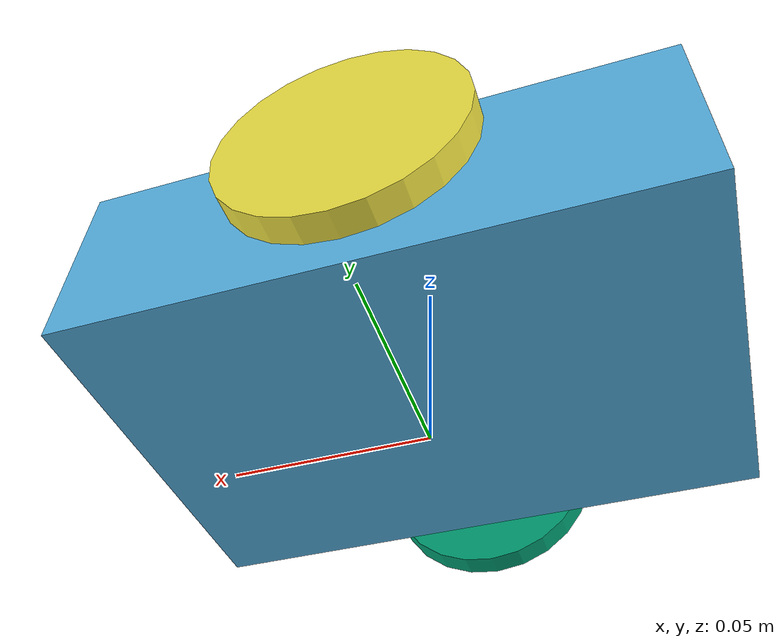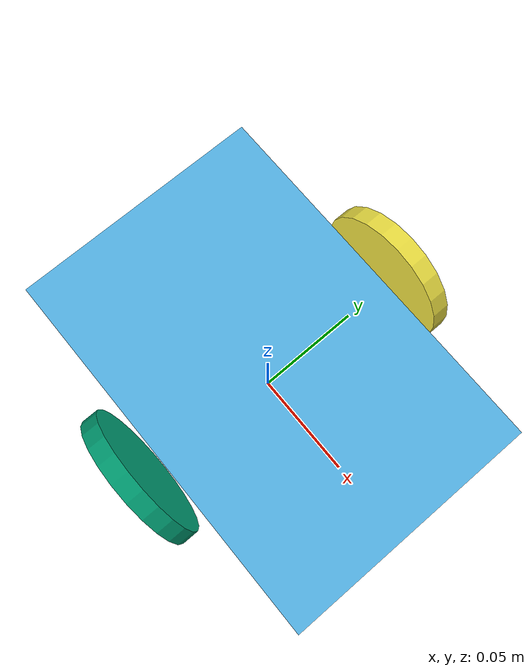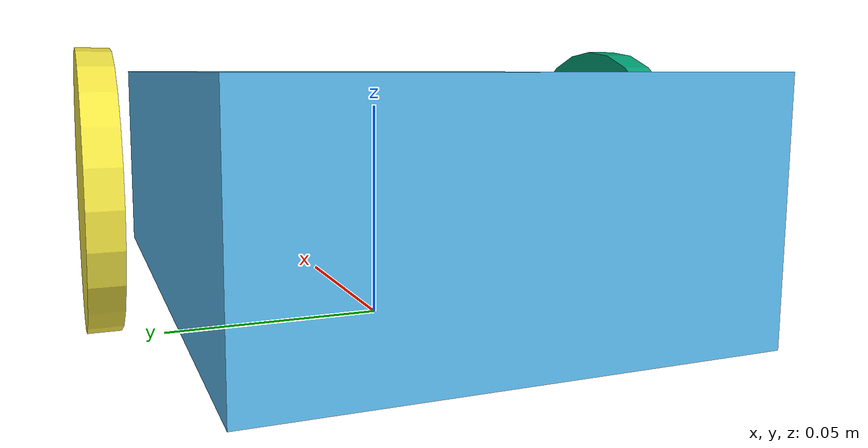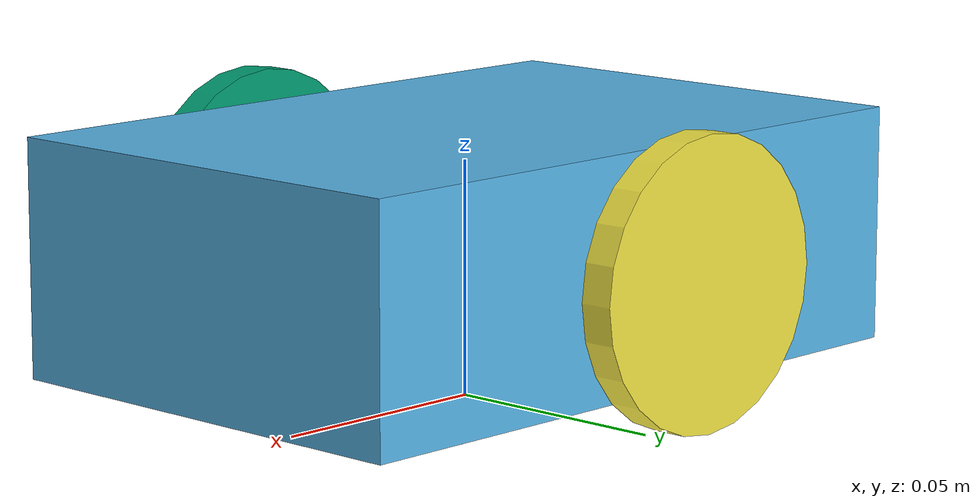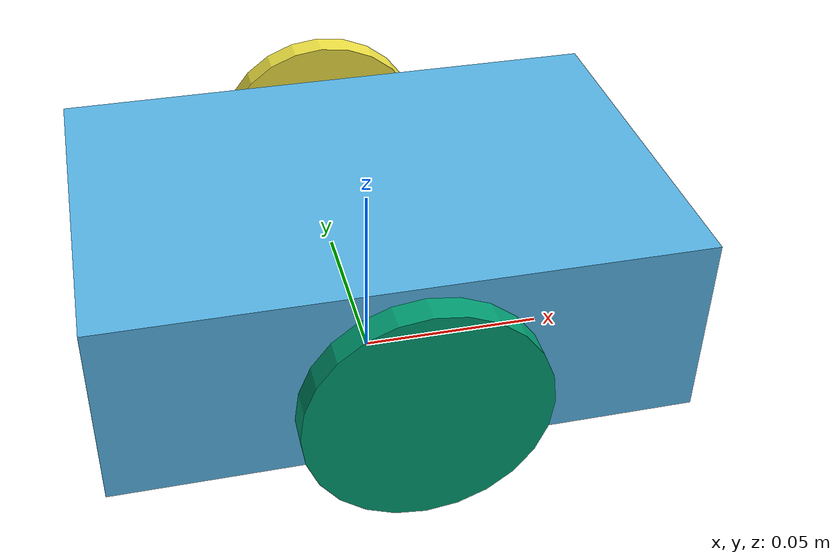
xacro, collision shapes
<?xml version="1.0"?>

<robot name="BGK_bot" xmlns:xacro="http://ros.org/wiki/xacro">
    <link name="odom"/>

    <link name="base_link">
        <collision>
            <origin xyz="0 0 0" rpy="0 0 0"/>
            <geometry>
                <box size="0.15 0.1 0.05"/>
            </geometry>
        </collision>

        <visual>
            <origin xyz="0 0 0" rpy="0 0 0"/>
            <geometry>
               <box size="0.1 0.1 0.05"/>
            </geometry>
            <color rgba="0.0 20.0 0.0 20.0"/>
        </visual>
    </link>
    <joint name="base_joint" type="fixed">
        <parent link="odom"/>
        <child link="base_link" />
        <origin xyz="0 0 0.033" rpy="0 0 0"/>
    </joint>

    <link name="wheel_right_link">
        <visual>
        <origin xyz="0 0 0" rpy="1.57 0 0" />
        <geometry>
            <mesh filename="package://robot_description/meshes/wheel_right_link.STL" />
        </geometry>
        </visual>
        <collision>
            <origin xyz="0 0 0" rpy="1.57 0 0" />
            <geometry>
                <cylinder length="0.007" radius="0.03" />
            </geometry>
        </collision>
    </link>

    <joint name="wheel_right_joint" type="fixed">
        <origin xyz="0 -0.063 0" rpy="0 0 0" />
        <parent link="base_link" />
        <child link="wheel_right_link" />
        <axis xyz="0 1 0" />
    </joint>

    <link name="wheel_left_link">
        <visual>
            <origin xyz="0 0 0" rpy="-1.57 0 0" />
            <geometry>
                <mesh filename="package://robot_description/meshes/wheel_left_link.STL" />
            </geometry>
        </visual>
        <collision>
            <origin xyz="0 0 0" rpy="-1.57 0 0" />
            <geometry>
                <cylinder length="0.007" radius="0.03" />
            </geometry>
        </collision>
    </link>

    <joint name="wheel_left_joint" type="fixed">
        <origin xyz="0 0.063 0" rpy="0 0 0" />
        <parent link="base_link" />
        <child link="wheel_left_link" />
        <axis xyz="0 1 0" />
    </joint>

</robot>
